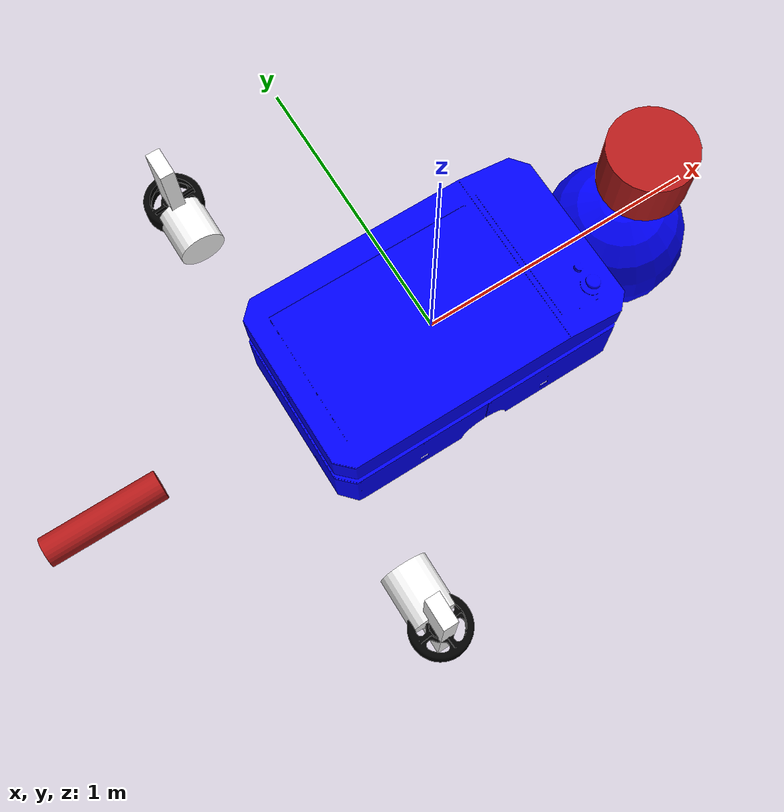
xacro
<?xml version="1.0" ?>

<robot name="robot" xmlns:xacro="http://www.ros.org/wiki/xacro">
    <xacro:include filename="$(find robot_description)/urdf/robot.gazebo"/>

    <!-- parameters -->
    <xacro:property name="chassis_mass" value="10"/>
    <xacro:property name="pi" value="3.14159265359"/>

    <!-- Link - chassis -->
    <link name="link_chassis">
        <inertial>
            <mass value="${chassis_mass}" />
            <origin xyz="0 0 0.3" rpy="0 0 0" />
            <inertia ixx="1.5417" ixy="0" ixz="0" iyy="3.467" iyz="0" izz="4.742" />
        </inertial>

        <collision>
            <geometry>
                <mesh filename="package://robot_description/meshes/chassis.stl" />
            </geometry>
        </collision>

        <visual>
            <geometry>
                <mesh filename="package://robot_description/meshes/chassis.stl" />
            </geometry>
            <material name="Blue">
                <color rgba="0 0 1 1" />
            </material>
        </visual>
    </link>
<!-- Joint - chassis / left wheel -->
<joint name="joint_chassis_left_wheel" type="continuous">
    <origin rpy="0 0 0" xyz="-0.5 0.65 0" />
    <child link="link_left_wheel" />
    <parent link="link_chassis" />
    <axis rpy="0 0 0" xyz="0 1 0" />
    <limit effort="10000" velocity="1000" />
    <joint_properties damping="1.0" friction="1.0" />
</joint>

<!-- Link - left wheel -->
<link name="link_left_wheel">
    <inertial>
        <mass value="1" />
        <origin xyz="0 0 0" rpy="0 0 0" />
        <inertia ixx="0.002526666666667" ixy="0" ixz="0" iyy="0.002526666666667" iyz="0" izz="0.005"/>
    </inertial>

    <collision>
        <origin rpy="${pi/2} 0 0" xyz="0 0.18 0" />
        <geometry>
            <mesh filename="package://robot_description/meshes/wheel.stl"/>
        </geometry>
    </collision>
    <visual>
        <origin rpy="${pi/2} 0 0" xyz="0 0.18 0" />
        <geometry>
            <mesh filename="package://robot_description/meshes/wheel.stl"/>
        </geometry>
        <material name="black">
            <color rgba="0 0 0 1" />
        </material>
    </visual>

    <collision>
        <origin rpy="${pi/2} 0 0" xyz="0 0.06 0" />
        <geometry>
            <cylinder length="0.12" radius="0.08"/>
        </geometry>
    </collision>
    <visual>
        <origin rpy="${pi/2} 0 0" xyz="0 0.06 0" />
        <geometry>
            <cylinder length="0.16" radius="0.08"/>
        </geometry>
        <material name="white">
            <color rgba="1 1 1 1" />
        </material>
    </visual>
    <collision>
        <origin rpy="0 0 0" xyz="0 0.17 0"/>
        <geometry>
            <box size="0.05 0.1 0.6"/>
        </geometry>
    </collision>
    <visual>
        <origin rpy="0 0 0" xyz="0 0.17 0"/>
        <geometry>
           <box size="0.05 0.10 0.6"/>
        </geometry>
        <material name="white">
            <color rgba="1 1 1 1" />
        </material>
    </visual>
</link>

<!-- Joint - chassis / right wheel -->
<joint name="joint_chassis_right_wheel" type="continuous">
    <origin rpy="0 0 0" xyz="-0.5 -0.65 0" />
    <child link="link_right_wheel" />
    <parent link="link_chassis" />
    <axis rpy="0 0 0" xyz="0 1 0" />
   <limit effort="10000" velocity="1000" />
    <joint_properties damping="1.0" friction="1.0" />
</joint>

<!-- Link - right wheel -->
<link name="link_right_wheel">
    <inertial>
        <mass value="1" />
        <origin xyz="0 0 0" rpy="0 0 0" />
        <inertia ixx="0.002526666666667" ixy="0" ixz="0" iyy="0.002526666666667" iyz="0" izz="0.005"/>
    </inertial>

    <collision>
        <origin rpy="${pi/2} 0 0" xyz="0 -0.18 0" />
        <geometry>
            <mesh filename="package://robot_description/meshes/wheel.stl"/>
        </geometry>
    </collision>
    <visual>
        <origin rpy="${pi/2} 0 0" xyz="0 -0.18 0" />
        <geometry>
            <mesh filename="package://robot_description/meshes/wheel.stl"/>
        </geometry>
        <material name="black">
               <color rgba="0 0 0 1" />
        </material>
    </visual>

    <collision>
        <origin rpy="${pi/2} 0 0" xyz="0 -0.06 0" />
        <geometry>
            <cylinder length="0.18" radius="0.08"/>
        </geometry>
    </collision>
    <visual>
        <origin rpy="${pi/2} 0 0" xyz="0 -0.06 0" />
        <geometry>
            <cylinder length="0.18" radius="0.08"/>
        </geometry>
        <material name="white">
            <color rgba="1 1 1 1" />
        </material>
    </visual>
    <collision>
        <origin rpy="0 0 0" xyz="0 -0.17 0"/>
        <geometry>
            <box size="0.05 0.1 0.6"/>
        </geometry>
    </collision>
    <visual>
        <origin rpy="0 0 0" xyz="0 -0.17 0"/>
        <geometry>
           <box size="0.05 0.10 0.6"/>
        </geometry>
        <material name="white">
            <color rgba="1 1 1 1" />
        </material>
    </visual>
</link>
<!-- joint chassis/robot_tail -->
<joint name="joint_tail" type="continuous">
    <origin rpy="0 0 0" xyz="-1 0 0"/>
    <child link="link_tail"/>
    <parent link="link_chassis"/>
    <axis rpy="0 0 0" xyz="0 1 0"/>
    <joint_properties damping="1.0" friction="1.0"/>
</joint>
<!-- link tail -->
<link name="link_tail">
    <inertial>
        <origin xyz="0 0 0" rpy="0 0 0"/>
        <mass value="0.5"/>
        <inertia ixx="0.000252666666667" ixy="0" ixz="0" iyy="0.000252666666667" iyz="0" izz="0.0005"/>
    </inertial>
    <collision>
        <origin xyz="-0.2 0 0" rpy="0 ${pi/2} 0"/>
        <geometry>
            <cylinder radius="0.05" length="0.4"/>
        </geometry>
    </collision>
    <visual>
        <origin xyz="-0.2 0 0" rpy="0 ${pi/2} 0"/>
        <geometry>
            <cylinder radius="0.05" length="0.4"/>
        </geometry>
        <material name="Red">
            <color rgba="0.7 0.1 0.1 1"/>
        </material>
    </visual>
</link>
<transmission name="tran_tail">
    <type>transmission_interface/SimpleTransmission</type>
    <joint name="joint_tail">
        <hardwareInterface>hardware_interface/EffortJointInterface</hardwareInterface>
    </joint>
    <actuator name="motor_joint_tail">
        <hardwareInterface>hardware_interface/EffortJointInterface</hardwareInterface>
        <mechanicalReduction>1</mechanicalReduction>
    </actuator>
</transmission>

<!-- joint chassis/caster wheel -->
<joint name="joint_chassis_caster_wheel" type="fixed">
    <origin rpy="0 0 0" xyz="0.75 0 -0.15"/>
    <child link="link_caster_wheel"/>
    <parent link="link_chassis"/>
    <axis rpy="0 0 0" xyz="1 1 1"/>
    <limit effort="10000" velocity="1000" />
    <joint_properties damping="1.0" friction="1.0" />
</joint>

<!-- link caster wheel -->
<link name="link_caster_wheel">
    <inertial>
        <mass value="0.5"/>
        <origin rpy="0 0 0" xyz="0 0 0"/>
        <inertia ixx="0.002526666666667" ixy="0" ixz="0" iyy="0.002526666666667" iyz="0" izz="0.005"/>
    </inertial>

    <collision>
        <origin rpy="0 0 0" xyz="0 0 0"/>
        <geometry>
            <sphere radius="0.25"/>
        </geometry>
    </collision>
    <visual>
        <origin rpy="0 0 0" xyz="0 0 0"/>
        <geometry>
            <sphere radius="0.25"/>
        </geometry>
        <material name="blue">
                <color rgba="0 0 1 1" />
        </material>
    </visual>

<collision>
        <origin rpy="0 0 0" xyz="0 0 -0.156"/>
        <geometry>
            <sphere radius="0.125"/>
        </geometry>
    </collision>
    <visual>
        <origin rpy="0 0 0" xyz="0 0 -0.156"/>
        <geometry>
            <sphere radius="0.125"/>
        </geometry>
        <material name="white">
            <color rgba="1 1 1 1" />
        </material>
    </visual>
</link>
    <!-- Laser scan -->
    <joint name="joint_laser_scan_chassis" type="fixed">
        <origin rpy="0 0 0" xyz="0.8 0 0.3" />
        <child link="link_laser_scan" />
        <parent link="link_chassis" />
        <joint_properties damping="1.0" friction="1.0" />
    </joint>
    <link name="link_laser_scan">
        <inertial>
            <origin xyz="0 0 0" rpy="0 0 0" />
            <mass value="0.5" />
            <inertia ixx="0.000252666666667" ixy="0" ixz="0" iyy="0.000252666666667" iyz="0" izz="0.0005"/>
        </inertial>
        <visual>
            <origin xyz="0 0 0" rpy="0 0 0" />
            <geometry>
                <cylinder radius="0.15" length="0.20"/>
            </geometry>
            <material name="Red">
                <color rgba="0.7 0.1 0.1 1" />
            </material>
        </visual>
        <collision>
            <origin xyz="0 0 0" rpy="0 0 0"/>
            <geometry>
                <cylinder radius="0.15" length="0.20"/>
            </geometry>
        </collision>
    </link>
</robot>
